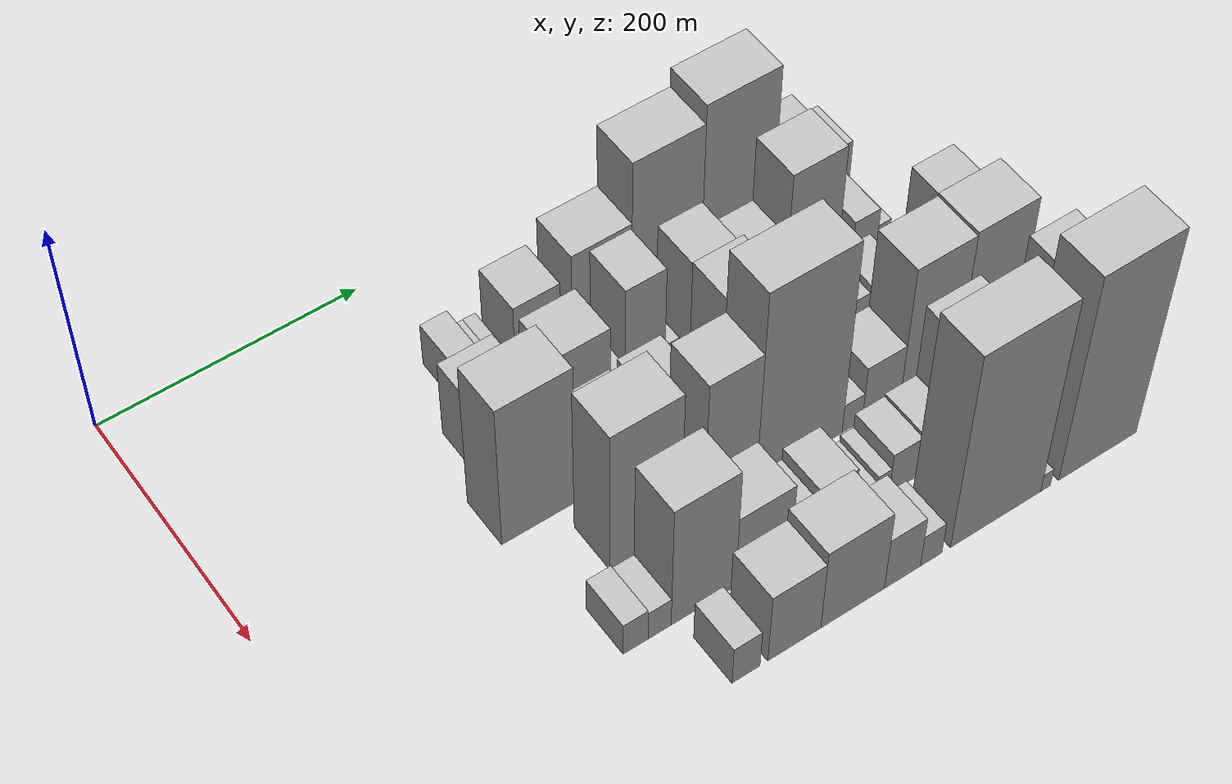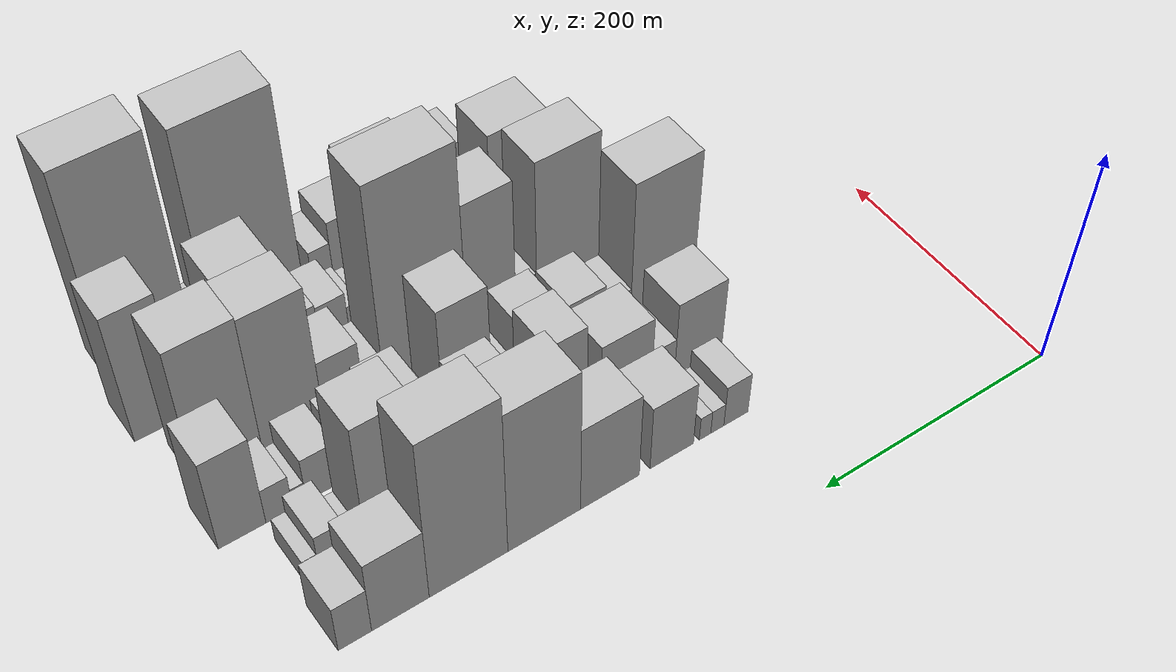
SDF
<sdf version="1.6">
 <world name="default">
  <model name="building_33">
   <static>1</static>
   <pose>100.0000 213.6342 0 0.000000 0.000000 0.000000</pose>
   <link name="link">
    <pose>0 0 21.00 0 0 0</pose>
    <collision name="collision"><geometry><box><size>40.0000 21.1630 42.0000</size></box></geometry></collision>
    <visual name="visual">
     <cast_shadows>0</cast_shadows>
     <geometry><box><size>40.0000 21.1630 42.0000</size></box></geometry>
     <material>
      <script>
       <uri>model://HANNAS_wall/materials/scripts</uri>
       <uri>model://HANNAS_wall/materials/textures</uri>
       <name>vrc/HANNAS_wall</name>
      </script>
     </material>
    </visual>
   </link>
  </model>
  <model name="building_34">
   <static>1</static>
   <pose>100.0000 229.9059 0 0.000000 0.000000 0.000000</pose>
   <link name="link">
    <pose>0 0 12.00 0 0 0</pose>
    <collision name="collision"><geometry><box><size>40.0000 11.3804 24.0000</size></box></geometry></collision>
    <visual name="visual">
     <cast_shadows>0</cast_shadows>
     <geometry><box><size>40.0000 11.3804 24.0000</size></box></geometry>
     <material>
      <script>
       <uri>model://HANNAS_wall/materials/scripts</uri>
       <uri>model://HANNAS_wall/materials/textures</uri>
       <name>vrc/HANNAS_wall</name>
      </script>
     </material>
    </visual>
   </link>
  </model>
  <model name="building_35">
   <static>1</static>
   <pose>100.0000 240.5709 0 0.000000 0.000000 0.000000</pose>
   <link name="link">
    <pose>0 0 12.00 0 0 0</pose>
    <collision name="collision"><geometry><box><size>40.0000 9.9495 24.0000</size></box></geometry></collision>
    <visual name="visual">
     <cast_shadows>0</cast_shadows>
     <geometry><box><size>40.0000 9.9495 24.0000</size></box></geometry>
     <material>
      <script>
       <uri>model://HANNAS_wall/materials/scripts</uri>
       <uri>model://HANNAS_wall/materials/textures</uri>
       <name>vrc/HANNAS_wall</name>
      </script>
     </material>
    </visual>
   </link>
  </model>
  <model name="building_36">
   <static>1</static>
   <pose>100.0000 269.0476 0 0.000000 0.000000 0.000000</pose>
   <link name="link">
    <pose>0 0 33.00 0 0 0</pose>
    <collision name="collision"><geometry><box><size>40.0000 37.0039 66.0000</size></box></geometry></collision>
    <visual name="visual">
     <cast_shadows>0</cast_shadows>
     <geometry><box><size>40.0000 37.0039 66.0000</size></box></geometry>
     <material>
      <script>
       <uri>model://HANNAS_wall/materials/scripts</uri>
       <uri>model://HANNAS_wall/materials/textures</uri>
       <name>vrc/HANNAS_wall</name>
      </script>
     </material>
    </visual>
   </link>
  </model>
  <model name="building_37">
   <static>1</static>
   <pose>100.0000 320.7996 0 0.000000 0.000000 0.000000</pose>
   <link name="link">
    <pose>0 0 43.50 0 0 0</pose>
    <collision name="collision"><geometry><box><size>40.0000 48.5000 87.0000</size></box></geometry></collision>
    <visual name="visual">
     <cast_shadows>0</cast_shadows>
     <geometry><box><size>40.0000 48.5000 87.0000</size></box></geometry>
     <material>
      <script>
       <uri>model://HANNAS_wall/materials/scripts</uri>
       <uri>model://HANNAS_wall/materials/textures</uri>
       <name>vrc/HANNAS_wall</name>
      </script>
     </material>
    </visual>
   </link>
  </model>
  <model name="building_38">
   <static>1</static>
   <pose>100.0000 374.0813 0 0.000000 0.000000 0.000000</pose>
   <link name="link">
    <pose>0 0 73.50 0 0 0</pose>
    <collision name="collision"><geometry><box><size>40.0000 58.0635 147.0000</size></box></geometry></collision>
    <visual name="visual">
     <cast_shadows>0</cast_shadows>
     <geometry><box><size>40.0000 58.0635 147.0000</size></box></geometry>
     <material>
      <script>
       <uri>model://HANNAS_wall/materials/scripts</uri>
       <uri>model://HANNAS_wall/materials/textures</uri>
       <name>vrc/HANNAS_wall</name>
      </script>
     </material>
    </visual>
   </link>
  </model>
  <model name="building_39">
   <static>1</static>
   <pose>100.0000 433.4413 0 0.000000 0.000000 0.000000</pose>
   <link name="link">
    <pose>0 0 82.50 0 0 0</pose>
    <collision name="collision"><geometry><box><size>40.0000 60.6566 165.0000</size></box></geometry></collision>
    <visual name="visual">
     <cast_shadows>0</cast_shadows>
     <geometry><box><size>40.0000 60.6566 165.0000</size></box></geometry>
     <material>
      <script>
       <uri>model://HANNAS_wall/materials/scripts</uri>
       <uri>model://HANNAS_wall/materials/textures</uri>
       <name>vrc/HANNAS_wall</name>
      </script>
     </material>
    </visual>
   </link>
  </model>
  <model name="building_40">
   <static>1</static>
   <pose>100.0000 485.2572 0 0.000000 0.000000 0.000000</pose>
   <link name="link">
    <pose>0 0 37.50 0 0 0</pose>
    <collision name="collision"><geometry><box><size>40.0000 42.9752 75.0000</size></box></geometry></collision>
    <visual name="visual">
     <cast_shadows>0</cast_shadows>
     <geometry><box><size>40.0000 42.9752 75.0000</size></box></geometry>
     <material>
      <script>
       <uri>model://HANNAS_wall/materials/scripts</uri>
       <uri>model://HANNAS_wall/materials/textures</uri>
       <name>vrc/HANNAS_wall</name>
      </script>
     </material>
    </visual>
   </link>
  </model>
  <model name="building_41">
   <static>1</static>
   <pose>100.0000 519.0186 0 0.000000 0.000000 0.000000</pose>
   <link name="link">
    <pose>0 0 24.00 0 0 0</pose>
    <collision name="collision"><geometry><box><size>40.0000 24.5476 48.0000</size></box></geometry></collision>
    <visual name="visual">
     <cast_shadows>0</cast_shadows>
     <geometry><box><size>40.0000 24.5476 48.0000</size></box></geometry>
     <material>
      <script>
       <uri>model://HANNAS_wall/materials/scripts</uri>
       <uri>model://HANNAS_wall/materials/textures</uri>
       <name>vrc/HANNAS_wall</name>
      </script>
     </material>
    </visual>
   </link>
  </model>
  <model name="building_84">
   <static>1</static>
   <pose>155.0000 204.1113 0 0.000000 0.000000 0.000000</pose>
   <link name="link">
    <pose>0 0 37.50 0 0 0</pose>
    <collision name="collision"><geometry><box><size>40.0000 42.0362 75.0000</size></box></geometry></collision>
    <visual name="visual">
     <cast_shadows>0</cast_shadows>
     <geometry><box><size>40.0000 42.0362 75.0000</size></box></geometry>
     <material>
      <script>
       <uri>model://HANNAS_wall/materials/scripts</uri>
       <uri>model://HANNAS_wall/materials/textures</uri>
       <name>vrc/HANNAS_wall</name>
      </script>
     </material>
    </visual>
   </link>
  </model>
  <model name="building_85">
   <static>1</static>
   <pose>155.0000 235.2988 0 0.000000 0.000000 0.000000</pose>
   <link name="link">
    <pose>0 0 19.50 0 0 0</pose>
    <collision name="collision"><geometry><box><size>40.0000 20.3389 39.0000</size></box></geometry></collision>
    <visual name="visual">
     <cast_shadows>0</cast_shadows>
     <geometry><box><size>40.0000 20.3389 39.0000</size></box></geometry>
     <material>
      <script>
       <uri>model://HANNAS_wall/materials/scripts</uri>
       <uri>model://HANNAS_wall/materials/textures</uri>
       <name>vrc/HANNAS_wall</name>
      </script>
     </material>
    </visual>
   </link>
  </model>
  <model name="building_86">
   <static>1</static>
   <pose>155.0000 267.4293 0 0.000000 0.000000 0.000000</pose>
   <link name="link">
    <pose>0 0 37.50 0 0 0</pose>
    <collision name="collision"><geometry><box><size>40.0000 43.9222 75.0000</size></box></geometry></collision>
    <visual name="visual">
     <cast_shadows>0</cast_shadows>
     <geometry><box><size>40.0000 43.9222 75.0000</size></box></geometry>
     <material>
      <script>
       <uri>model://HANNAS_wall/materials/scripts</uri>
       <uri>model://HANNAS_wall/materials/textures</uri>
       <name>vrc/HANNAS_wall</name>
      </script>
     </material>
    </visual>
   </link>
  </model>
  <model name="building_87">
   <static>1</static>
   <pose>155.0000 295.2013 0 0.000000 0.000000 0.000000</pose>
   <link name="link">
    <pose>0 0 13.50 0 0 0</pose>
    <collision name="collision"><geometry><box><size>40.0000 11.6217 27.0000</size></box></geometry></collision>
    <visual name="visual">
     <cast_shadows>0</cast_shadows>
     <geometry><box><size>40.0000 11.6217 27.0000</size></box></geometry>
     <material>
      <script>
       <uri>model://HANNAS_wall/materials/scripts</uri>
       <uri>model://HANNAS_wall/materials/textures</uri>
       <name>vrc/HANNAS_wall</name>
      </script>
     </material>
    </visual>
   </link>
  </model>
  <model name="building_88">
   <static>1</static>
   <pose>155.0000 317.1308 0 0.000000 0.000000 0.000000</pose>
   <link name="link">
    <pose>0 0 52.50 0 0 0</pose>
    <collision name="collision"><geometry><box><size>40.0000 32.2372 105.0000</size></box></geometry></collision>
    <visual name="visual">
     <cast_shadows>0</cast_shadows>
     <geometry><box><size>40.0000 32.2372 105.0000</size></box></geometry>
     <material>
      <script>
       <uri>model://HANNAS_wall/materials/scripts</uri>
       <uri>model://HANNAS_wall/materials/textures</uri>
       <name>vrc/HANNAS_wall</name>
      </script>
     </material>
    </visual>
   </link>
  </model>
  <model name="building_89">
   <static>1</static>
   <pose>155.0000 339.0552 0 0.000000 0.000000 0.000000</pose>
   <link name="link">
    <pose>0 0 12.00 0 0 0</pose>
    <collision name="collision"><geometry><box><size>40.0000 11.6116 24.0000</size></box></geometry></collision>
    <visual name="visual">
     <cast_shadows>0</cast_shadows>
     <geometry><box><size>40.0000 11.6116 24.0000</size></box></geometry>
     <material>
      <script>
       <uri>model://HANNAS_wall/materials/scripts</uri>
       <uri>model://HANNAS_wall/materials/textures</uri>
       <name>vrc/HANNAS_wall</name>
      </script>
     </material>
    </visual>
   </link>
  </model>
  <model name="building_90">
   <static>1</static>
   <pose>155.0000 372.6373 0 0.000000 0.000000 0.000000</pose>
   <link name="link">
    <pose>0 0 46.50 0 0 0</pose>
    <collision name="collision"><geometry><box><size>40.0000 35.5527 93.0000</size></box></geometry></collision>
    <visual name="visual">
     <cast_shadows>0</cast_shadows>
     <geometry><box><size>40.0000 35.5527 93.0000</size></box></geometry>
     <material>
      <script>
       <uri>model://HANNAS_wall/materials/scripts</uri>
       <uri>model://HANNAS_wall/materials/textures</uri>
       <name>vrc/HANNAS_wall</name>
      </script>
     </material>
    </visual>
   </link>
  </model>
  <model name="building_91">
   <static>1</static>
   <pose>155.0000 413.1992 0 0.000000 0.000000 0.000000</pose>
   <link name="link">
    <pose>0 0 33.00 0 0 0</pose>
    <collision name="collision"><geometry><box><size>40.0000 39.5711 66.0000</size></box></geometry></collision>
    <visual name="visual">
     <cast_shadows>0</cast_shadows>
     <geometry><box><size>40.0000 39.5711 66.0000</size></box></geometry>
     <material>
      <script>
       <uri>model://HANNAS_wall/materials/scripts</uri>
       <uri>model://HANNAS_wall/materials/textures</uri>
       <name>vrc/HANNAS_wall</name>
      </script>
     </material>
    </visual>
   </link>
  </model>
  <model name="building_92">
   <static>1</static>
   <pose>155.0000 455.3554 0 0.000000 0.000000 0.000000</pose>
   <link name="link">
    <pose>0 0 64.50 0 0 0</pose>
    <collision name="collision"><geometry><box><size>40.0000 44.7413 129.0000</size></box></geometry></collision>
    <visual name="visual">
     <cast_shadows>0</cast_shadows>
     <geometry><box><size>40.0000 44.7413 129.0000</size></box></geometry>
     <material>
      <script>
       <uri>model://HANNAS_wall/materials/scripts</uri>
       <uri>model://HANNAS_wall/materials/textures</uri>
       <name>vrc/HANNAS_wall</name>
      </script>
     </material>
    </visual>
   </link>
  </model>
  <model name="building_93">
   <static>1</static>
   <pose>155.0000 481.4058 0 0.000000 0.000000 0.000000</pose>
   <link name="link">
    <pose>0 0 9.00 0 0 0</pose>
    <collision name="collision"><geometry><box><size>40.0000 7.3594 18.0000</size></box></geometry></collision>
    <visual name="visual">
     <cast_shadows>0</cast_shadows>
     <geometry><box><size>40.0000 7.3594 18.0000</size></box></geometry>
     <material>
      <script>
       <uri>model://HANNAS_wall/materials/scripts</uri>
       <uri>model://HANNAS_wall/materials/textures</uri>
       <name>vrc/HANNAS_wall</name>
      </script>
     </material>
    </visual>
   </link>
  </model>
  <model name="building_94">
   <static>1</static>
   <pose>155.0000 501.8825 0 0.000000 0.000000 0.000000</pose>
   <link name="link">
    <pose>0 0 21.00 0 0 0</pose>
    <collision name="collision"><geometry><box><size>40.0000 21.5941 42.0000</size></box></geometry></collision>
    <visual name="visual">
     <cast_shadows>0</cast_shadows>
     <geometry><box><size>40.0000 21.5941 42.0000</size></box></geometry>
     <material>
      <script>
       <uri>model://HANNAS_wall/materials/scripts</uri>
       <uri>model://HANNAS_wall/materials/textures</uri>
       <name>vrc/HANNAS_wall</name>
      </script>
     </material>
    </visual>
   </link>
  </model>
  <model name="building_95">
   <static>1</static>
   <pose>155.0000 518.0475 0 0.000000 0.000000 0.000000</pose>
   <link name="link">
    <pose>0 0 12.00 0 0 0</pose>
    <collision name="collision"><geometry><box><size>40.0000 10.7358 24.0000</size></box></geometry></collision>
    <visual name="visual">
     <cast_shadows>0</cast_shadows>
     <geometry><box><size>40.0000 10.7358 24.0000</size></box></geometry>
     <material>
      <script>
       <uri>model://HANNAS_wall/materials/scripts</uri>
       <uri>model://HANNAS_wall/materials/textures</uri>
       <name>vrc/HANNAS_wall</name>
      </script>
     </material>
    </visual>
   </link>
  </model>
  <model name="building_139">
   <static>1</static>
   <pose>210.0000 195.0399 0 0.000000 0.000000 0.000000</pose>
   <link name="link">
    <pose>0 0 72.00 0 0 0</pose>
    <collision name="collision"><geometry><box><size>40.0000 56.8860 144.0000</size></box></geometry></collision>
    <visual name="visual">
     <cast_shadows>0</cast_shadows>
     <geometry><box><size>40.0000 56.8860 144.0000</size></box></geometry>
     <material>
      <script>
       <uri>model://HANNAS_wall/materials/scripts</uri>
       <uri>model://HANNAS_wall/materials/textures</uri>
       <name>vrc/HANNAS_wall</name>
      </script>
     </material>
    </visual>
   </link>
  </model>
  <model name="building_140">
   <static>1</static>
   <pose>210.0000 234.5546 0 0.000000 0.000000 0.000000</pose>
   <link name="link">
    <pose>0 0 19.50 0 0 0</pose>
    <collision name="collision"><geometry><box><size>40.0000 22.1435 39.0000</size></box></geometry></collision>
    <visual name="visual">
     <cast_shadows>0</cast_shadows>
     <geometry><box><size>40.0000 22.1435 39.0000</size></box></geometry>
     <material>
      <script>
       <uri>model://HANNAS_wall/materials/scripts</uri>
       <uri>model://HANNAS_wall/materials/textures</uri>
       <name>vrc/HANNAS_wall</name>
      </script>
     </material>
    </visual>
   </link>
  </model>
  <model name="building_141">
   <static>1</static>
   <pose>210.0000 261.7753 0 0.000000 0.000000 0.000000</pose>
   <link name="link">
    <pose>0 0 28.50 0 0 0</pose>
    <collision name="collision"><geometry><box><size>40.0000 32.2980 57.0000</size></box></geometry></collision>
    <visual name="visual">
     <cast_shadows>0</cast_shadows>
     <geometry><box><size>40.0000 32.2980 57.0000</size></box></geometry>
     <material>
      <script>
       <uri>model://HANNAS_wall/materials/scripts</uri>
       <uri>model://HANNAS_wall/materials/textures</uri>
       <name>vrc/HANNAS_wall</name>
      </script>
     </material>
    </visual>
   </link>
  </model>
  <model name="building_142">
   <static>1</static>
   <pose>210.0000 301.1468 0 0.000000 0.000000 0.000000</pose>
   <link name="link">
    <pose>0 0 31.50 0 0 0</pose>
    <collision name="collision"><geometry><box><size>40.0000 34.4449 63.0000</size></box></geometry></collision>
    <visual name="visual">
     <cast_shadows>0</cast_shadows>
     <geometry><box><size>40.0000 34.4449 63.0000</size></box></geometry>
     <material>
      <script>
       <uri>model://HANNAS_wall/materials/scripts</uri>
       <uri>model://HANNAS_wall/materials/textures</uri>
       <name>vrc/HANNAS_wall</name>
      </script>
     </material>
    </visual>
   </link>
  </model>
  <model name="building_143">
   <static>1</static>
   <pose>210.0000 333.2950 0 0.000000 0.000000 0.000000</pose>
   <link name="link">
    <pose>0 0 16.50 0 0 0</pose>
    <collision name="collision"><geometry><box><size>40.0000 17.8514 33.0000</size></box></geometry></collision>
    <visual name="visual">
     <cast_shadows>0</cast_shadows>
     <geometry><box><size>40.0000 17.8514 33.0000</size></box></geometry>
     <material>
      <script>
       <uri>model://HANNAS_wall/materials/scripts</uri>
       <uri>model://HANNAS_wall/materials/textures</uri>
       <name>vrc/HANNAS_wall</name>
      </script>
     </material>
    </visual>
   </link>
  </model>
  <model name="building_144">
   <static>1</static>
   <pose>210.0000 362.0878 0 0.000000 0.000000 0.000000</pose>
   <link name="link">
    <pose>0 0 60.00 0 0 0</pose>
    <collision name="collision"><geometry><box><size>40.0000 39.7342 120.0000</size></box></geometry></collision>
    <visual name="visual">
     <cast_shadows>0</cast_shadows>
     <geometry><box><size>40.0000 39.7342 120.0000</size></box></geometry>
     <material>
      <script>
       <uri>model://HANNAS_wall/materials/scripts</uri>
       <uri>model://HANNAS_wall/materials/textures</uri>
       <name>vrc/HANNAS_wall</name>
      </script>
     </material>
    </visual>
   </link>
  </model>
  <model name="building_145">
   <static>1</static>
   <pose>210.0000 386.7161 0 0.000000 0.000000 0.000000</pose>
   <link name="link">
    <pose>0 0 10.50 0 0 0</pose>
    <collision name="collision"><geometry><box><size>40.0000 9.5225 21.0000</size></box></geometry></collision>
    <visual name="visual">
     <cast_shadows>0</cast_shadows>
     <geometry><box><size>40.0000 9.5225 21.0000</size></box></geometry>
     <material>
      <script>
       <uri>model://HANNAS_wall/materials/scripts</uri>
       <uri>model://HANNAS_wall/materials/textures</uri>
       <name>vrc/HANNAS_wall</name>
      </script>
     </material>
    </visual>
   </link>
  </model>
  <model name="building_146">
   <static>1</static>
   <pose>210.0000 411.9550 0 0.000000 0.000000 0.000000</pose>
   <link name="link">
    <pose>0 0 28.50 0 0 0</pose>
    <collision name="collision"><geometry><box><size>40.0000 32.9553 57.0000</size></box></geometry></collision>
    <visual name="visual">
     <cast_shadows>0</cast_shadows>
     <geometry><box><size>40.0000 32.9553 57.0000</size></box></geometry>
     <material>
      <script>
       <uri>model://HANNAS_wall/materials/scripts</uri>
       <uri>model://HANNAS_wall/materials/textures</uri>
       <name>vrc/HANNAS_wall</name>
      </script>
     </material>
    </visual>
   </link>
  </model>
  <model name="building_147">
   <static>1</static>
   <pose>210.0000 448.3736 0 0.000000 0.000000 0.000000</pose>
   <link name="link">
    <pose>0 0 22.50 0 0 0</pose>
    <collision name="collision"><geometry><box><size>40.0000 23.8818 45.0000</size></box></geometry></collision>
    <visual name="visual">
     <cast_shadows>0</cast_shadows>
     <geometry><box><size>40.0000 23.8818 45.0000</size></box></geometry>
     <material>
      <script>
       <uri>model://HANNAS_wall/materials/scripts</uri>
       <uri>model://HANNAS_wall/materials/textures</uri>
       <name>vrc/HANNAS_wall</name>
      </script>
     </material>
    </visual>
   </link>
  </model>
  <model name="building_148">
   <static>1</static>
   <pose>210.0000 477.7309 0 0.000000 0.000000 0.000000</pose>
   <link name="link">
    <pose>0 0 22.50 0 0 0</pose>
    <collision name="collision"><geometry><box><size>40.0000 26.8328 45.0000</size></box></geometry></collision>
    <visual name="visual">
     <cast_shadows>0</cast_shadows>
     <geometry><box><size>40.0000 26.8328 45.0000</size></box></geometry>
     <material>
      <script>
       <uri>model://HANNAS_wall/materials/scripts</uri>
       <uri>model://HANNAS_wall/materials/textures</uri>
       <name>vrc/HANNAS_wall</name>
      </script>
     </material>
    </visual>
   </link>
  </model>
  <model name="building_149">
   <static>1</static>
   <pose>210.0000 496.2869 0 0.000000 0.000000 0.000000</pose>
   <link name="link">
    <pose>0 0 10.50 0 0 0</pose>
    <collision name="collision"><geometry><box><size>40.0000 10.2793 21.0000</size></box></geometry></collision>
    <visual name="visual">
     <cast_shadows>0</cast_shadows>
     <geometry><box><size>40.0000 10.2793 21.0000</size></box></geometry>
     <material>
      <script>
       <uri>model://HANNAS_wall/materials/scripts</uri>
       <uri>model://HANNAS_wall/materials/textures</uri>
       <name>vrc/HANNAS_wall</name>
      </script>
     </material>
    </visual>
   </link>
  </model>
  <model name="building_150">
   <static>1</static>
   <pose>210.0000 511.6242 0 0.000000 0.000000 0.000000</pose>
   <link name="link">
    <pose>0 0 18.00 0 0 0</pose>
    <collision name="collision"><geometry><box><size>40.0000 20.3953 36.0000</size></box></geometry></collision>
    <visual name="visual">
     <cast_shadows>0</cast_shadows>
     <geometry><box><size>40.0000 20.3953 36.0000</size></box></geometry>
     <material>
      <script>
       <uri>model://HANNAS_wall/materials/scripts</uri>
       <uri>model://HANNAS_wall/materials/textures</uri>
       <name>vrc/HANNAS_wall</name>
      </script>
     </material>
    </visual>
   </link>
  </model>
  <model name="building_151">
   <static>1</static>
   <pose>210.0000 539.5760 0 0.000000 0.000000 0.000000</pose>
   <link name="link">
    <pose>0 0 46.50 0 0 0</pose>
    <collision name="collision"><geometry><box><size>40.0000 35.5083 93.0000</size></box></geometry></collision>
    <visual name="visual">
     <cast_shadows>0</cast_shadows>
     <geometry><box><size>40.0000 35.5083 93.0000</size></box></geometry>
     <material>
      <script>
       <uri>model://HANNAS_wall/materials/scripts</uri>
       <uri>model://HANNAS_wall/materials/textures</uri>
       <name>vrc/HANNAS_wall</name>
      </script>
     </material>
    </visual>
   </link>
  </model>
  <model name="building_194">
   <static>1</static>
   <pose>265.0000 239.6863 0 0.000000 0.000000 0.000000</pose>
   <link name="link">
    <pose>0 0 72.00 0 0 0</pose>
    <collision name="collision"><geometry><box><size>40.0000 55.1654 144.0000</size></box></geometry></collision>
    <visual name="visual">
     <cast_shadows>0</cast_shadows>
     <geometry><box><size>40.0000 55.1654 144.0000</size></box></geometry>
     <material>
      <script>
       <uri>model://HANNAS_wall/materials/scripts</uri>
       <uri>model://HANNAS_wall/materials/textures</uri>
       <name>vrc/HANNAS_wall</name>
      </script>
     </material>
    </visual>
   </link>
  </model>
  <model name="building_195">
   <static>1</static>
   <pose>265.0000 276.3459 0 0.000000 0.000000 0.000000</pose>
   <link name="link">
    <pose>0 0 16.50 0 0 0</pose>
    <collision name="collision"><geometry><box><size>40.0000 18.1538 33.0000</size></box></geometry></collision>
    <visual name="visual">
     <cast_shadows>0</cast_shadows>
     <geometry><box><size>40.0000 18.1538 33.0000</size></box></geometry>
     <material>
      <script>
       <uri>model://HANNAS_wall/materials/scripts</uri>
       <uri>model://HANNAS_wall/materials/textures</uri>
       <name>vrc/HANNAS_wall</name>
      </script>
     </material>
    </visual>
   </link>
  </model>
  <model name="building_196">
   <static>1</static>
   <pose>265.0000 306.2364 0 0.000000 0.000000 0.000000</pose>
   <link name="link">
    <pose>0 0 69.00 0 0 0</pose>
    <collision name="collision"><geometry><box><size>40.0000 41.6271 138.0000</size></box></geometry></collision>
    <visual name="visual">
     <cast_shadows>0</cast_shadows>
     <geometry><box><size>40.0000 41.6271 138.0000</size></box></geometry>
     <material>
      <script>
       <uri>model://HANNAS_wall/materials/scripts</uri>
       <uri>model://HANNAS_wall/materials/textures</uri>
       <name>vrc/HANNAS_wall</name>
      </script>
     </material>
    </visual>
   </link>
  </model>
  <model name="building_197">
   <static>1</static>
   <pose>265.0000 362.1113 0 0.000000 0.000000 0.000000</pose>
   <link name="link">
    <pose>0 0 99.00 0 0 0</pose>
    <collision name="collision"><geometry><box><size>40.0000 70.1226 198.0000</size></box></geometry></collision>
    <visual name="visual">
     <cast_shadows>0</cast_shadows>
     <geometry><box><size>40.0000 70.1226 198.0000</size></box></geometry>
     <material>
      <script>
       <uri>model://HANNAS_wall/materials/scripts</uri>
       <uri>model://HANNAS_wall/materials/textures</uri>
       <name>vrc/HANNAS_wall</name>
      </script>
     </material>
    </visual>
   </link>
  </model>
  <model name="building_198">
   <static>1</static>
   <pose>265.0000 405.5204 0 0.000000 0.000000 0.000000</pose>
   <link name="link">
    <pose>0 0 15.00 0 0 0</pose>
    <collision name="collision"><geometry><box><size>40.0000 16.6958 30.0000</size></box></geometry></collision>
    <visual name="visual">
     <cast_shadows>0</cast_shadows>
     <geometry><box><size>40.0000 16.6958 30.0000</size></box></geometry>
     <material>
      <script>
       <uri>model://HANNAS_wall/materials/scripts</uri>
       <uri>model://HANNAS_wall/materials/textures</uri>
       <name>vrc/HANNAS_wall</name>
      </script>
     </material>
    </visual>
   </link>
  </model>
  <model name="building_199">
   <static>1</static>
   <pose>265.0000 429.8800 0 0.000000 0.000000 0.000000</pose>
   <link name="link">
    <pose>0 0 28.50 0 0 0</pose>
    <collision name="collision"><geometry><box><size>40.0000 32.0234 57.0000</size></box></geometry></collision>
    <visual name="visual">
     <cast_shadows>0</cast_shadows>
     <geometry><box><size>40.0000 32.0234 57.0000</size></box></geometry>
     <material>
      <script>
       <uri>model://HANNAS_wall/materials/scripts</uri>
       <uri>model://HANNAS_wall/materials/textures</uri>
       <name>vrc/HANNAS_wall</name>
      </script>
     </material>
    </visual>
   </link>
  </model>
  <model name="building_200">
   <static>1</static>
   <pose>265.0000 470.1295 0 0.000000 0.000000 0.000000</pose>
   <link name="link">
    <pose>0 0 67.50 0 0 0</pose>
    <collision name="collision"><geometry><box><size>40.0000 48.4755 135.0000</size></box></geometry></collision>
    <visual name="visual">
     <cast_shadows>0</cast_shadows>
     <geometry><box><size>40.0000 48.4755 135.0000</size></box></geometry>
     <material>
      <script>
       <uri>model://HANNAS_wall/materials/scripts</uri>
       <uri>model://HANNAS_wall/materials/textures</uri>
       <name>vrc/HANNAS_wall</name>
      </script>
     </material>
    </visual>
   </link>
  </model>
  <model name="building_201">
   <static>1</static>
   <pose>265.0000 519.8952 0 0.000000 0.000000 0.000000</pose>
   <link name="link">
    <pose>0 0 69.00 0 0 0</pose>
    <collision name="collision"><geometry><box><size>40.0000 51.0560 138.0000</size></box></geometry></collision>
    <visual name="visual">
     <cast_shadows>0</cast_shadows>
     <geometry><box><size>40.0000 51.0560 138.0000</size></box></geometry>
     <material>
      <script>
       <uri>model://HANNAS_wall/materials/scripts</uri>
       <uri>model://HANNAS_wall/materials/textures</uri>
       <name>vrc/HANNAS_wall</name>
      </script>
     </material>
    </visual>
   </link>
  </model>
  <model name="building_247">
   <static>1</static>
   <pose>320.0000 192.9419 0 0.000000 0.000000 0.000000</pose>
   <link name="link">
    <pose>0 0 16.50 0 0 0</pose>
    <collision name="collision"><geometry><box><size>40.0000 18.8121 33.0000</size></box></geometry></collision>
    <visual name="visual">
     <cast_shadows>0</cast_shadows>
     <geometry><box><size>40.0000 18.8121 33.0000</size></box></geometry>
     <material>
      <script>
       <uri>model://HANNAS_wall/materials/scripts</uri>
       <uri>model://HANNAS_wall/materials/textures</uri>
       <name>vrc/HANNAS_wall</name>
      </script>
     </material>
    </visual>
   </link>
  </model>
  <model name="building_248">
   <static>1</static>
   <pose>320.0000 211.1480 0 0.000000 0.000000 0.000000</pose>
   <link name="link">
    <pose>0 0 15.00 0 0 0</pose>
    <collision name="collision"><geometry><box><size>40.0000 17.6000 30.0000</size></box></geometry></collision>
    <visual name="visual">
     <cast_shadows>0</cast_shadows>
     <geometry><box><size>40.0000 17.6000 30.0000</size></box></geometry>
     <material>
      <script>
       <uri>model://HANNAS_wall/materials/scripts</uri>
       <uri>model://HANNAS_wall/materials/textures</uri>
       <name>vrc/HANNAS_wall</name>
      </script>
     </material>
    </visual>
   </link>
  </model>
  <model name="building_249">
   <static>1</static>
   <pose>320.0000 244.8406 0 0.000000 0.000000 0.000000</pose>
   <link name="link">
    <pose>0 0 63.00 0 0 0</pose>
    <collision name="collision"><geometry><box><size>40.0000 49.7852 126.0000</size></box></geometry></collision>
    <visual name="visual">
     <cast_shadows>0</cast_shadows>
     <geometry><box><size>40.0000 49.7852 126.0000</size></box></geometry>
     <material>
      <script>
       <uri>model://HANNAS_wall/materials/scripts</uri>
       <uri>model://HANNAS_wall/materials/textures</uri>
       <name>vrc/HANNAS_wall</name>
      </script>
     </material>
    </visual>
   </link>
  </model>
  <model name="building_250">
   <static>1</static>
   <pose>320.0000 291.6297 0 0.000000 0.000000 0.000000</pose>
   <link name="link">
    <pose>0 0 37.50 0 0 0</pose>
    <collision name="collision"><geometry><box><size>40.0000 43.7930 75.0000</size></box></geometry></collision>
    <visual name="visual">
     <cast_shadows>0</cast_shadows>
     <geometry><box><size>40.0000 43.7930 75.0000</size></box></geometry>
     <material>
      <script>
       <uri>model://HANNAS_wall/materials/scripts</uri>
       <uri>model://HANNAS_wall/materials/textures</uri>
       <name>vrc/HANNAS_wall</name>
      </script>
     </material>
    </visual>
   </link>
  </model>
  <model name="building_251">
   <static>1</static>
   <pose>320.0000 323.9141 0 0.000000 0.000000 0.000000</pose>
   <link name="link">
    <pose>0 0 19.50 0 0 0</pose>
    <collision name="collision"><geometry><box><size>40.0000 20.7757 39.0000</size></box></geometry></collision>
    <visual name="visual">
     <cast_shadows>0</cast_shadows>
     <geometry><box><size>40.0000 20.7757 39.0000</size></box></geometry>
     <material>
      <script>
       <uri>model://HANNAS_wall/materials/scripts</uri>
       <uri>model://HANNAS_wall/materials/textures</uri>
       <name>vrc/HANNAS_wall</name>
      </script>
     </material>
    </visual>
   </link>
  </model>
  <model name="building_252">
   <static>1</static>
   <pose>320.0000 349.1519 0 0.000000 0.000000 0.000000</pose>
   <link name="link">
    <pose>0 0 25.50 0 0 0</pose>
    <collision name="collision"><geometry><box><size>40.0000 29.6998 51.0000</size></box></geometry></collision>
    <visual name="visual">
     <cast_shadows>0</cast_shadows>
     <geometry><box><size>40.0000 29.6998 51.0000</size></box></geometry>
     <material>
      <script>
       <uri>model://HANNAS_wall/materials/scripts</uri>
       <uri>model://HANNAS_wall/materials/textures</uri>
       <name>vrc/HANNAS_wall</name>
      </script>
     </material>
    </visual>
   </link>
  </model>
  <model name="building_253">
   <static>1</static>
   <pose>320.0000 377.4104 0 0.000000 0.000000 0.000000</pose>
   <link name="link">
    <pose>0 0 10.50 0 0 0</pose>
    <collision name="collision"><geometry><box><size>40.0000 8.8173 21.0000</size></box></geometry></collision>
    <visual name="visual">
     <cast_shadows>0</cast_shadows>
     <geometry><box><size>40.0000 8.8173 21.0000</size></box></geometry>
     <material>
      <script>
       <uri>model://HANNAS_wall/materials/scripts</uri>
       <uri>model://HANNAS_wall/materials/textures</uri>
       <name>vrc/HANNAS_wall</name>
      </script>
     </material>
    </visual>
   </link>
  </model>
  <model name="building_254">
   <static>1</static>
   <pose>320.0000 387.3208 0 0.000000 0.000000 0.000000</pose>
   <link name="link">
    <pose>0 0 13.50 0 0 0</pose>
    <collision name="collision"><geometry><box><size>40.0000 11.0035 27.0000</size></box></geometry></collision>
    <visual name="visual">
     <cast_shadows>0</cast_shadows>
     <geometry><box><size>40.0000 11.0035 27.0000</size></box></geometry>
     <material>
      <script>
       <uri>model://HANNAS_wall/materials/scripts</uri>
       <uri>model://HANNAS_wall/materials/textures</uri>
       <name>vrc/HANNAS_wall</name>
      </script>
     </material>
    </visual>
   </link>
  </model>
  <model name="building_255">
   <static>1</static>
   <pose>320.0000 404.8061 0 0.000000 0.000000 0.000000</pose>
   <link name="link">
    <pose>0 0 21.00 0 0 0</pose>
    <collision name="collision"><geometry><box><size>40.0000 23.9671 42.0000</size></box></geometry></collision>
    <visual name="visual">
     <cast_shadows>0</cast_shadows>
     <geometry><box><size>40.0000 23.9671 42.0000</size></box></geometry>
     <material>
      <script>
       <uri>model://HANNAS_wall/materials/scripts</uri>
       <uri>model://HANNAS_wall/materials/textures</uri>
       <name>vrc/HANNAS_wall</name>
      </script>
     </material>
    </visual>
   </link>
  </model>
  <model name="building_256">
   <static>1</static>
   <pose>320.0000 429.6260 0 0.000000 0.000000 0.000000</pose>
   <link name="link">
    <pose>0 0 22.50 0 0 0</pose>
    <collision name="collision"><geometry><box><size>40.0000 25.6726 45.0000</size></box></geometry></collision>
    <visual name="visual">
     <cast_shadows>0</cast_shadows>
     <geometry><box><size>40.0000 25.6726 45.0000</size></box></geometry>
     <material>
      <script>
       <uri>model://HANNAS_wall/materials/scripts</uri>
       <uri>model://HANNAS_wall/materials/textures</uri>
       <name>vrc/HANNAS_wall</name>
      </script>
     </material>
    </visual>
   </link>
  </model>
  <model name="building_257">
   <static>1</static>
   <pose>320.0000 464.5893 0 0.000000 0.000000 0.000000</pose>
   <link name="link">
    <pose>0 0 58.50 0 0 0</pose>
    <collision name="collision"><geometry><box><size>40.0000 44.2541 117.0000</size></box></geometry></collision>
    <visual name="visual">
     <cast_shadows>0</cast_shadows>
     <geometry><box><size>40.0000 44.2541 117.0000</size></box></geometry>
     <material>
      <script>
       <uri>model://HANNAS_wall/materials/scripts</uri>
       <uri>model://HANNAS_wall/materials/textures</uri>
       <name>vrc/HANNAS_wall</name>
      </script>
     </material>
    </visual>
   </link>
  </model>
  <model name="building_258">
   <static>1</static>
   <pose>320.0000 505.5560 0 0.000000 0.000000 0.000000</pose>
   <link name="link">
    <pose>0 0 37.50 0 0 0</pose>
    <collision name="collision"><geometry><box><size>40.0000 37.6792 75.0000</size></box></geometry></collision>
    <visual name="visual">
     <cast_shadows>0</cast_shadows>
     <geometry><box><size>40.0000 37.6792 75.0000</size></box></geometry>
     <material>
      <script>
       <uri>model://HANNAS_wall/materials/scripts</uri>
       <uri>model://HANNAS_wall/materials/textures</uri>
       <name>vrc/HANNAS_wall</name>
      </script>
     </material>
    </visual>
   </link>
  </model>
  <model name="building_259">
   <static>1</static>
   <pose>320.0000 543.7895 0 0.000000 0.000000 0.000000</pose>
   <link name="link">
    <pose>0 0 64.50 0 0 0</pose>
    <collision name="collision"><geometry><box><size>40.0000 38.7878 129.0000</size></box></geometry></collision>
    <visual name="visual">
     <cast_shadows>0</cast_shadows>
     <geometry><box><size>40.0000 38.7878 129.0000</size></box></geometry>
     <material>
      <script>
       <uri>model://HANNAS_wall/materials/scripts</uri>
       <uri>model://HANNAS_wall/materials/textures</uri>
       <name>vrc/HANNAS_wall</name>
      </script>
     </material>
    </visual>
   </link>
  </model>
  <model name="building_297">
   <static>1</static>
   <pose>375.0000 237.0935 0 0.000000 0.000000 0.000000</pose>
   <link name="link">
    <pose>0 0 19.50 0 0 0</pose>
    <collision name="collision"><geometry><box><size>40.0000 21.3975 39.0000</size></box></geometry></collision>
    <visual name="visual">
     <cast_shadows>0</cast_shadows>
     <geometry><box><size>40.0000 21.3975 39.0000</size></box></geometry>
     <material>
      <script>
       <uri>model://HANNAS_wall/materials/scripts</uri>
       <uri>model://HANNAS_wall/materials/textures</uri>
       <name>vrc/HANNAS_wall</name>
      </script>
     </material>
    </visual>
   </link>
  </model>
  <model name="building_298">
   <static>1</static>
   <pose>375.0000 274.3535 0 0.000000 0.000000 0.000000</pose>
   <link name="link">
    <pose>0 0 36.00 0 0 0</pose>
    <collision name="collision"><geometry><box><size>40.0000 41.1226 72.0000</size></box></geometry></collision>
    <visual name="visual">
     <cast_shadows>0</cast_shadows>
     <geometry><box><size>40.0000 41.1226 72.0000</size></box></geometry>
     <material>
      <script>
       <uri>model://HANNAS_wall/materials/scripts</uri>
       <uri>model://HANNAS_wall/materials/textures</uri>
       <name>vrc/HANNAS_wall</name>
      </script>
     </material>
    </visual>
   </link>
  </model>
  <model name="building_299">
   <static>1</static>
   <pose>375.0000 320.0780 0 0.000000 0.000000 0.000000</pose>
   <link name="link">
    <pose>0 0 42.00 0 0 0</pose>
    <collision name="collision"><geometry><box><size>40.0000 50.3265 84.0000</size></box></geometry></collision>
    <visual name="visual">
     <cast_shadows>0</cast_shadows>
     <geometry><box><size>40.0000 50.3265 84.0000</size></box></geometry>
     <material>
      <script>
       <uri>model://HANNAS_wall/materials/scripts</uri>
       <uri>model://HANNAS_wall/materials/textures</uri>
       <name>vrc/HANNAS_wall</name>
      </script>
     </material>
    </visual>
   </link>
  </model>
  <model name="building_300">
   <static>1</static>
   <pose>375.0000 359.7056 0 0.000000 0.000000 0.000000</pose>
   <link name="link">
    <pose>0 0 27.00 0 0 0</pose>
    <collision name="collision"><geometry><box><size>40.0000 28.9287 54.0000</size></box></geometry></collision>
    <visual name="visual">
     <cast_shadows>0</cast_shadows>
     <geometry><box><size>40.0000 28.9287 54.0000</size></box></geometry>
     <material>
      <script>
       <uri>model://HANNAS_wall/materials/scripts</uri>
       <uri>model://HANNAS_wall/materials/textures</uri>
       <name>vrc/HANNAS_wall</name>
      </script>
     </material>
    </visual>
   </link>
  </model>
  <model name="building_301">
   <static>1</static>
   <pose>375.0000 382.9322 0 0.000000 0.000000 0.000000</pose>
   <link name="link">
    <pose>0 0 16.50 0 0 0</pose>
    <collision name="collision"><geometry><box><size>40.0000 17.5246 33.0000</size></box></geometry></collision>
    <visual name="visual">
     <cast_shadows>0</cast_shadows>
     <geometry><box><size>40.0000 17.5246 33.0000</size></box></geometry>
     <material>
      <script>
       <uri>model://HANNAS_wall/materials/scripts</uri>
       <uri>model://HANNAS_wall/materials/textures</uri>
       <name>vrc/HANNAS_wall</name>
      </script>
     </material>
    </visual>
   </link>
  </model>
  <model name="building_302">
   <static>1</static>
   <pose>375.0000 436.1160 0 0.000000 0.000000 0.000000</pose>
   <link name="link">
    <pose>0 0 100.50 0 0 0</pose>
    <collision name="collision"><geometry><box><size>40.0000 74.8429 201.0000</size></box></geometry></collision>
    <visual name="visual">
     <cast_shadows>0</cast_shadows>
     <geometry><box><size>40.0000 74.8429 201.0000</size></box></geometry>
     <material>
      <script>
       <uri>model://HANNAS_wall/materials/scripts</uri>
       <uri>model://HANNAS_wall/materials/textures</uri>
       <name>vrc/HANNAS_wall</name>
      </script>
     </material>
    </visual>
   </link>
  </model>
  <model name="building_303">
   <static>1</static>
   <pose>375.0000 477.6221 0 0.000000 0.000000 0.000000</pose>
   <link name="link">
    <pose>0 0 9.00 0 0 0</pose>
    <collision name="collision"><geometry><box><size>40.0000 8.1693 18.0000</size></box></geometry></collision>
    <visual name="visual">
     <cast_shadows>0</cast_shadows>
     <geometry><box><size>40.0000 8.1693 18.0000</size></box></geometry>
     <material>
      <script>
       <uri>model://HANNAS_wall/materials/scripts</uri>
       <uri>model://HANNAS_wall/materials/textures</uri>
       <name>vrc/HANNAS_wall</name>
      </script>
     </material>
    </visual>
   </link>
  </model>
  <model name="building_304">
   <static>1</static>
   <pose>375.0000 521.8768 0 0.000000 0.000000 0.000000</pose>
   <link name="link">
    <pose>0 0 105.00 0 0 0</pose>
    <collision name="collision"><geometry><box><size>40.0000 66.3401 210.0000</size></box></geometry></collision>
    <visual name="visual">
     <cast_shadows>0</cast_shadows>
     <geometry><box><size>40.0000 66.3401 210.0000</size></box></geometry>
     <material>
      <script>
       <uri>model://HANNAS_wall/materials/scripts</uri>
       <uri>model://HANNAS_wall/materials/textures</uri>
       <name>vrc/HANNAS_wall</name>
      </script>
     </material>
    </visual>
   </link>
  </model>
 </world>
</sdf>
